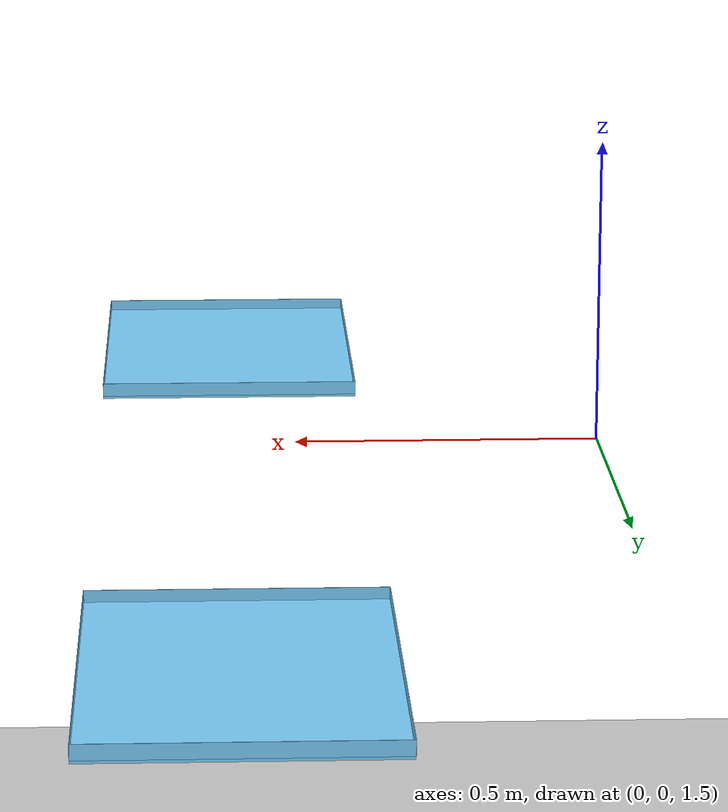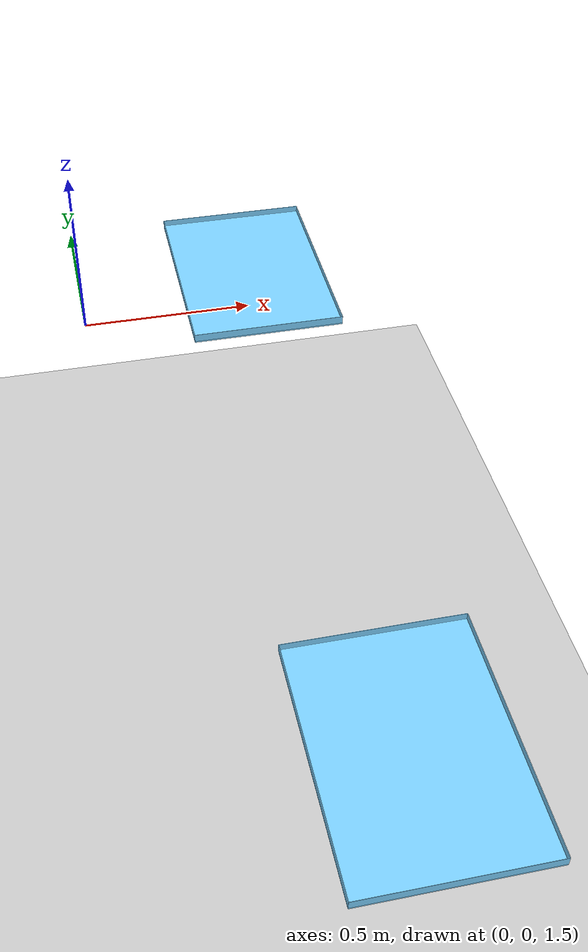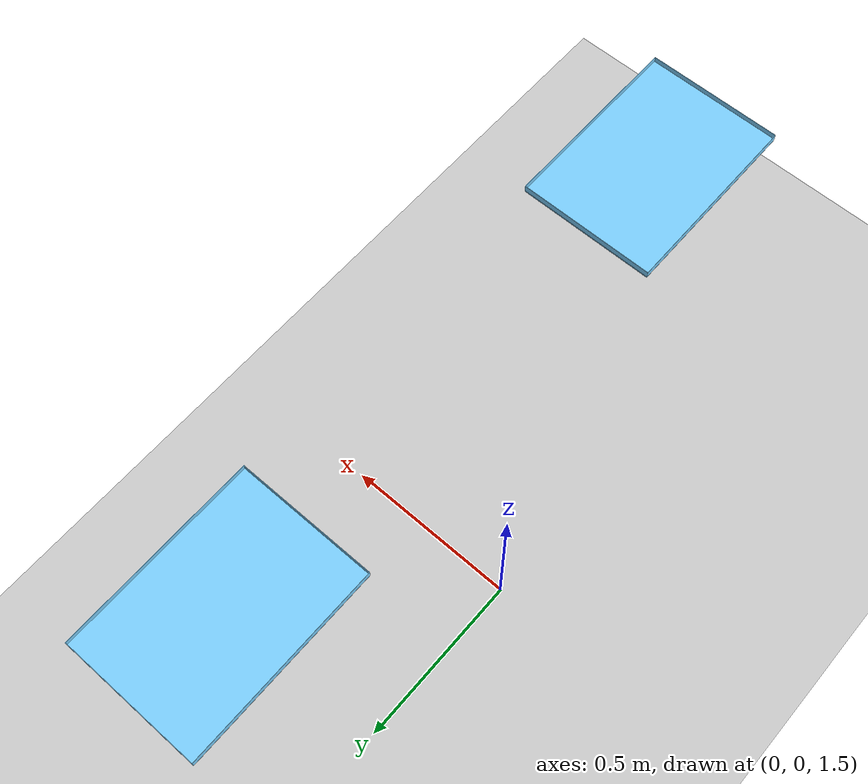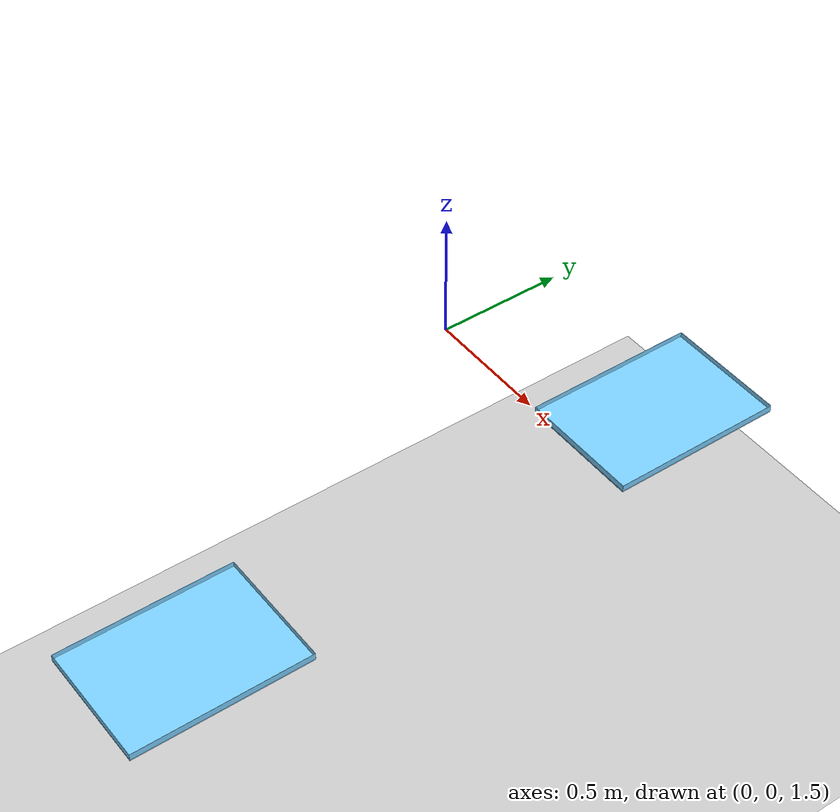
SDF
<?xml version="1.0" ?>
<sdf version="1.5">
  <world name="simple_workcell">

    <!-- A global light source -->
    <include>
      <uri>model://sun</uri>
    </include>

    <!-- A ground plane -->
    <include>
      <uri>model://ground_plane</uri>
    </include>

    <!-- a tray for building kits -->
    <include>
      <name>kit_tray_1</name>
      <uri>model://kit_tray</uri>
      <pose>0.6 -1.5 1.27 0 0 0</pose>
    </include>

    <!-- tray 2 for building kits -->
    <include>
      <name>kit_tray_2</name>
      <uri>model://kit_tray</uri>
      <pose>0.6 0.5 1.27 0 0 0</pose>
    </include>

    <!-- Populate kit tray 1 -->
    <plugin filename="libPopulationPlugin.so" name="populate_kit_tray_1">
      <activation_topic>~/conveyor/control</activation_topic>
      <loop_forever>false</loop_forever>
      <frame>kit_tray_1</frame>
      <object_sequence>
        <object>
          <time>1.0</time>
          <type>part1</type>
          <pose>-0.2 -0.15 0 0 0 0</pose>
        </object>
        <object>
          <time>3.0</time>
          <type>part2</type>
          <pose>0. 0.15 0 0 0 0</pose>
        </object>
        <object>
          <time>5.0</time>
          <type>part2</type>
          <pose>-0.2 0.15 0 0 0 0</pose>
        </object>
        <object>
          <time>7.0</time>
          <type>part2</type>
          <pose>-0.2 0.0 0 0 0 0</pose>
        </object>
      </object_sequence>
    </plugin>

    <!-- Populate kit tray 2 -->
    <plugin filename="libPopulationPlugin.so" name="populate_kit_tray_2">
      <activation_topic>~/conveyor/control</activation_topic>
      <loop_forever>false</loop_forever>
      <frame>kit_tray_2</frame>
      <object_sequence>
        <object>
          <time>2.0</time>
          <type>part2</type>
          <pose>-0.2 -0.15 0 0 0 0.05</pose>
        </object>
        <object>
          <time>4.0</time>
          <type>part2</type>
          <pose>0. 0.15 0 0 0 -0.05</pose>
        </object>
        <object>
          <time>6.0</time>
          <type>part2</type>
          <pose>-0.2 0.15 0 0 0 0.05</pose>
        </object>
        <object>
          <time>8.0</time>
          <type>part1</type>
          <pose>-0.2 0.0 0 0 0 0.9</pose>
        </object>
      </object_sequence>
    </plugin>

    <!-- The NIST-ARIAC task manager -->
    <plugin filename="libROSAriacTaskManagerPlugin.so" name="task_manager">
      <robot_namespace>ariac</robot_namespace>
      <team_start_service_name>/ariac/start_competition</team_start_service_name>
      <conveyor_activation_topic>~/conveyor/control</conveyor_activation_topic>
      <goals_topic>/ariac/orders</goals_topic>
      <goal>
        <start_time>0.0</start_time>
        <allowed_time>15.0</allowed_time>
        <kit>
          <tray>kit_tray_1</tray>
          <object>
            <!-- this is purposefully impossible -->
            <type>part3</type>
            <pose>-0.2 -0.15 0 0 0 0</pose>
          </object>
          <object>
            <type>part2</type>
            <pose>-0.2 0 0 0 0 0</pose>
          </object>
          <object>
            <type>part2</type>
            <pose>-0.2 0.15 0 0 0 0</pose>
          </object>
        </kit>
        <kit>
          <tray>kit_tray_2</tray>
          <object>
            <type>part2</type>
            <pose>-0.2 -0.15 0 0 0 0</pose>
          </object>
          <object>
            <type>part1</type>
            <pose>-0.2 0 0 0 0 0</pose>
          </object>
          <object>
            <type>part2</type>
            <pose>-0.2 0.15 0 0 0 0</pose>
          </object>
        </kit>
      </goal>
      <goal>
        <!-- this goal is achievable -->
        <start_time>5.0</start_time>
        <allowed_time>5.0</allowed_time>
        <kit>
          <tray>kit_tray_1</tray>
          <object>
            <type>part1</type>
            <pose>-0.2 -0.15 0 0 0 0</pose>
          </object>
          <object>
            <type>part2</type>
            <pose>-0.2 0 0 0 0 0</pose>
          </object>
          <object>
            <type>part2</type>
            <pose>-0.2 0.15 0 0 0 0</pose>
          </object>
        </kit>
        <kit>
          <tray>kit_tray_2</tray>
          <object>
            <type>part2</type>
            <pose>-0.2 -0.15 0 0 0 0</pose>
          </object>
          <object>
            <type>part1</type>
            <pose>-0.2 0 0 0 0 0</pose>
          </object>
          <object>
            <type>part2</type>
            <pose>-0.2 0.15 0 0 0 0</pose>
          </object>
        </kit>
      </goal>
    </plugin>

  </world>
</sdf>

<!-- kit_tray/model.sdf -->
<sdf version="1.6">
  <model name="kit_tray">
    <static>false</static>
    <link name="tray">
      <sensor name='kit_tray_contact' type='contact'>
        <update_rate>1</update_rate>
        <contact>
          <collision>tray_collision</collision>
        </contact>
      </sensor>
      <gravity>false</gravity>
      <collision name="tray_collision">
        <geometry>
          <box>
            <size>0.5 0.7 0.01</size>
          </box>
        </geometry>
      </collision>
      <collision name="tray_collision1">
        <pose>0.25 0 0.0127 0 0 0</pose>
        <geometry>
          <box>
            <size>0.001 0.7 0.0254</size>
          </box>
        </geometry>
      </collision>
      <visual name="tray_visual1">
        <pose>0.25 0 0.0127 0 0 0</pose>
        <geometry>
          <box>
            <size>0.001 0.7 0.0254</size>
          </box>
        </geometry>
        <material>
          <ambient>0.48627451 0.819607843 1 1</ambient>
          <diffuse>0.48627451 0.819607843 1 1</diffuse>
        </material>
      </visual>

      <collision name="tray_collision2">
        <pose>-0.25 0 0.0127 0 0 0</pose>
        <geometry>
          <box>
            <size>0.001 0.7 0.0254</size>
          </box>
        </geometry>
      </collision>
      <visual name="tray_visual2">
        <pose>-0.25 0 0.0127 0 0 0</pose>
        <geometry>
          <box>
            <size>0.001 0.7 0.0254</size>
          </box>
        </geometry>
        <material>
          <ambient>0.48627451 0.819607843 1 1</ambient>
          <diffuse>0.48627451 0.819607843 1 1</diffuse>
        </material>
      </visual>

      <collision name="tray_collision3">
        <pose>0 0.35 0.0127 0 0 0</pose>
        <geometry>
          <box>
            <size>0.5 0.001 0.0254</size>
          </box>
        </geometry>
      </collision>
      <visual name="tray_visual3">
        <pose>0 0.35 0.0127 0 0 0</pose>
        <geometry>
          <box>
            <size>0.5 0.001 0.0254</size>
          </box>
        </geometry>
        <material>
          <ambient>0.48627451 0.819607843 1 1</ambient>
          <diffuse>0.48627451 0.819607843 1 1</diffuse>
        </material>
      </visual>

      <collision name="tray_collision4">
        <pose>0 -0.35 0.0127 0 0 0</pose>
        <geometry>
          <box>
            <size>0.5 0.001 0.0254</size>
          </box>
        </geometry>
      </collision>
      <visual name="tray_visual4">
        <pose>0 -0.35 0.0127 0 0 0</pose>
        <geometry>
          <box>
            <size>0.5 0.001 0.0254</size>
          </box>
        </geometry>
        <material>
          <ambient>0.48627451 0.819607843 1 1</ambient>
          <diffuse>0.48627451 0.819607843 1 1</diffuse>
        </material>
      </visual>

      <visual name="visual">
        <geometry>
          <box>
            <size>0.5 0.7 0.01</size>
          </box>
        </geometry>
        <material>
          <ambient>0.48627451 0.819607843 1 1</ambient>
          <diffuse>0.48627451 0.819607843 1 1</diffuse>
        </material>
      </visual>
    </link>
    <allow_auto_disable>0</allow_auto_disable>
  </model>
</sdf>
